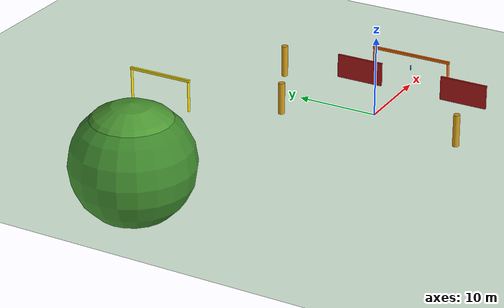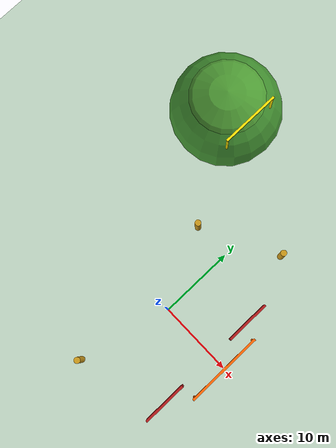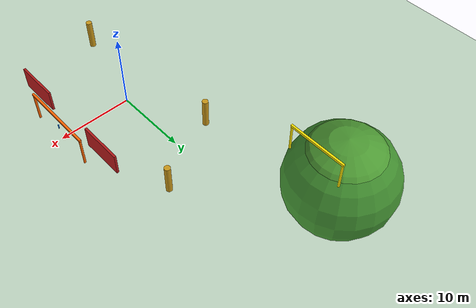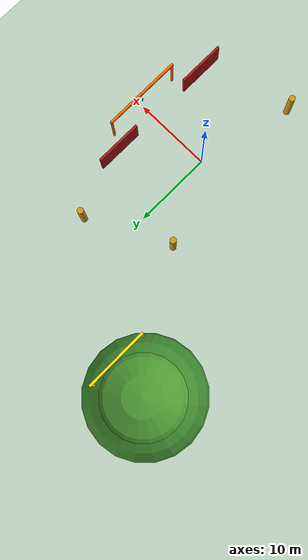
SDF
<sdf version="1.8">
 <world name="ares_world">
  <model name="ground_plane">
   <static>true</static>
   <link name="link">
    <collision name="collision">
     <geometry><plane><normal>0 0 1</normal><size>200 200</size></plane></geometry>
    </collision>
    <visual name="visual">
     <geometry><plane><normal>0 0 1</normal><size>200 200</size></plane></geometry>
     <material><ambient>0.2 0.4 0.2 1</ambient><diffuse>0.2 0.5 0.2 1</diffuse></material>
    </visual>
   </link>
  </model>
  <model name="hill_2">
   <static>true</static>
   <pose>-15 25 0 0 0 0</pose>
   <link name="link">
    <collision name="col">
     <geometry><sphere><radius>8</radius></sphere></geometry>
     <pose>0 0 -6 0 0 0</pose>
    </collision>
    <visual name="vis">
     <geometry><sphere><radius>8</radius></sphere></geometry>
     <pose>0 0 -6 0 0 0</pose>
     <material><ambient>0.3 0.5 0.2 1</ambient><diffuse>0.3 0.6 0.2 1</diffuse></material>
    </visual>
   </link>
  </model>
  <model name="gate_1_left_post">
   <static>true</static>
   <pose>10 -5 0 0 0 0</pose>
   <link name="link">
    <collision name="col">
     <geometry><cylinder><radius>0.15</radius><length>4</length></cylinder></geometry>
     <pose>0 0 2 0 0 0</pose>
    </collision>
    <visual name="vis">
     <geometry><cylinder><radius>0.15</radius><length>4</length></cylinder></geometry>
     <pose>0 0 2 0 0 0</pose>
     <material><ambient>1 0.4 0 1</ambient><diffuse>1 0.4 0 1</diffuse></material>
    </visual>
   </link>
  </model>
  <model name="gate_1_right_post">
   <static>true</static>
   <pose>10 5 0 0 0 0</pose>
   <link name="link">
    <collision name="col">
     <geometry><cylinder><radius>0.15</radius><length>4</length></cylinder></geometry>
     <pose>0 0 2 0 0 0</pose>
    </collision>
    <visual name="vis">
     <geometry><cylinder><radius>0.15</radius><length>4</length></cylinder></geometry>
     <pose>0 0 2 0 0 0</pose>
     <material><ambient>1 0.4 0 1</ambient><diffuse>1 0.4 0 1</diffuse></material>
    </visual>
   </link>
  </model>
  <model name="gate_1_top_bar">
   <static>true</static>
   <pose>10 0 4 0 0 0</pose>
   <link name="link">
    <collision name="col"><geometry><box><size>0.3 10.3 0.3</size></box></geometry></collision>
    <visual name="vis">
     <geometry><box><size>0.3 10.3 0.3</size></box></geometry>
     <material><ambient>1 0.4 0 1</ambient><diffuse>1 0.4 0 1</diffuse></material>
    </visual>
   </link>
  </model>
  <model name="gate_4_left_post">
   <static>true</static>
   <pose>-10 20 0 0 0 0</pose>
   <link name="link">
    <collision name="col">
     <geometry><cylinder><radius>0.15</radius><length>4</length></cylinder></geometry>
     <pose>0 0 2 0 0 0</pose>
    </collision>
    <visual name="vis">
     <geometry><cylinder><radius>0.15</radius><length>4</length></cylinder></geometry>
     <pose>0 0 2 0 0 0</pose>
     <material><ambient>1 0.9 0 1</ambient><diffuse>1 0.9 0 1</diffuse></material>
    </visual>
   </link>
  </model>
  <model name="gate_4_right_post">
   <static>true</static>
   <pose>-10 28 0 0 0 0</pose>
   <link name="link">
    <collision name="col">
     <geometry><cylinder><radius>0.15</radius><length>4</length></cylinder></geometry>
     <pose>0 0 2 0 0 0</pose>
    </collision>
    <visual name="vis">
     <geometry><cylinder><radius>0.15</radius><length>4</length></cylinder></geometry>
     <pose>0 0 2 0 0 0</pose>
     <material><ambient>1 0.9 0 1</ambient><diffuse>1 0.9 0 1</diffuse></material>
    </visual>
   </link>
  </model>
  <model name="gate_4_top_bar">
   <static>true</static>
   <pose>-10 24 4 0 0 0</pose>
   <link name="link">
    <collision name="col"><geometry><box><size>0.3 8.3 0.3</size></box></geometry></collision>
    <visual name="vis">
     <geometry><box><size>0.3 8.3 0.3</size></box></geometry>
     <material><ambient>1 0.9 0 1</ambient><diffuse>1 0.9 0 1</diffuse></material>
    </visual>
   </link>
  </model>
  <model name="slalom_wall_left">
   <static>true</static>
   <pose>8 -8 1.5 0 0 0</pose>
   <link name="link">
    <collision name="col"><geometry><box><size>0.3 6 3</size></box></geometry></collision>
    <visual name="vis">
     <geometry><box><size>0.3 6 3</size></box></geometry>
     <material><ambient>0.6 0.1 0.1 1</ambient><diffuse>0.7 0.1 0.1 1</diffuse></material>
    </visual>
   </link>
  </model>
  <model name="slalom_wall_right">
   <static>true</static>
   <pose>8 6 1.5 0 0 0</pose>
   <link name="link">
    <collision name="col"><geometry><box><size>0.3 6 3</size></box></geometry></collision>
    <visual name="vis">
     <geometry><box><size>0.3 6 3</size></box></geometry>
     <material><ambient>0.6 0.1 0.1 1</ambient><diffuse>0.7 0.1 0.1 1</diffuse></material>
    </visual>
   </link>
  </model>
  <model name="pillar_1">
   <static>true</static>
   <pose>-5 10 2 0 0 0</pose>
   <link name="link">
    <collision name="col">
     <geometry><cylinder><radius>0.4</radius><length>4</length></cylinder></geometry>
    </collision>
    <visual name="vis">
     <geometry><cylinder><radius>0.4</radius><length>4</length></cylinder></geometry>
     <material><ambient>0.7 0.5 0.1 1</ambient><diffuse>0.8 0.6 0.1 1</diffuse></material>
    </visual>
   </link>
  </model>
  <model name="pillar_2">
   <static>true</static>
   <pose>5 15 2 0 0 0</pose>
   <link name="link">
    <collision name="col">
     <geometry><cylinder><radius>0.4</radius><length>4</length></cylinder></geometry>
    </collision>
    <visual name="vis">
     <geometry><cylinder><radius>0.4</radius><length>4</length></cylinder></geometry>
     <material><ambient>0.7 0.5 0.1 1</ambient><diffuse>0.8 0.6 0.1 1</diffuse></material>
    </visual>
   </link>
  </model>
  <model name="pillar_3">
   <static>true</static>
   <pose>-3 -12 2 0 0 0</pose>
   <link name="link">
    <collision name="col">
     <geometry><cylinder><radius>0.4</radius><length>4</length></cylinder></geometry>
    </collision>
    <visual name="vis">
     <geometry><cylinder><radius>0.4</radius><length>4</length></cylinder></geometry>
     <material><ambient>0.7 0.5 0.1 1</ambient><diffuse>0.8 0.6 0.1 1</diffuse></material>
    </visual>
   </link>
  </model>
  <model name="wp_start">
   <static>true</static>
   <pose>0 0 2.3 0 0 0</pose>
   <link name="link">
    <visual name="vis">
     <geometry><cylinder><radius>0.07</radius><length>0.6</length></cylinder></geometry>
     <material><ambient>0.0 0.8 0.0 1</ambient><diffuse>0.0 1.0 0.0 1</diffuse></material>
    </visual>
   </link>
  </model>
  <model name="wp_1">
   <static>true</static>
   <pose>10 0 2.3 0 0 0</pose>
   <link name="link">
    <visual name="vis">
     <geometry><cylinder><radius>0.07</radius><length>0.6</length></cylinder></geometry>
     <material><ambient>0.0 0.4 0.9 1</ambient><diffuse>0.0 0.5 1.0 1</diffuse></material>
    </visual>
   </link>
  </model>
 </world>
</sdf>
